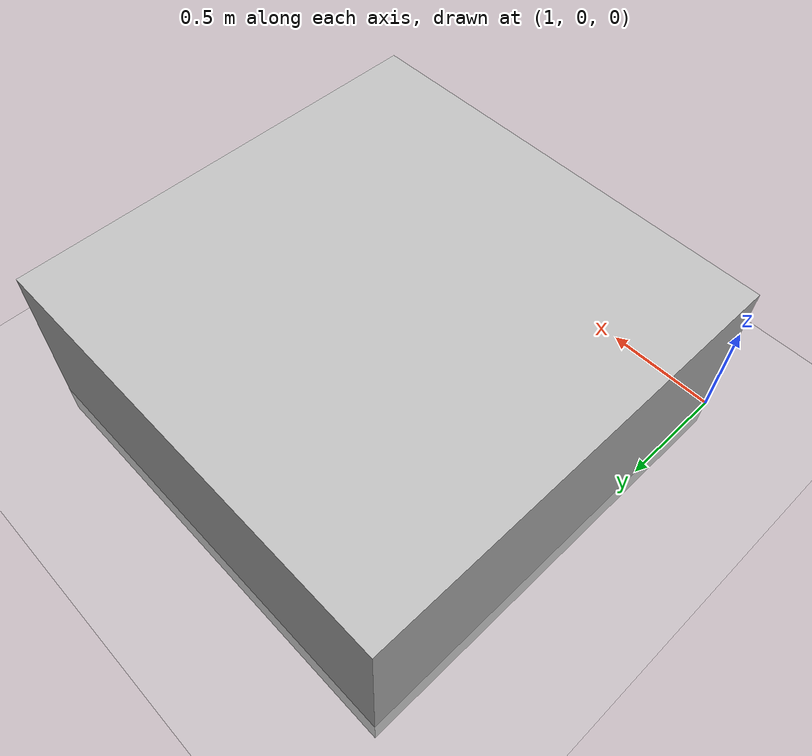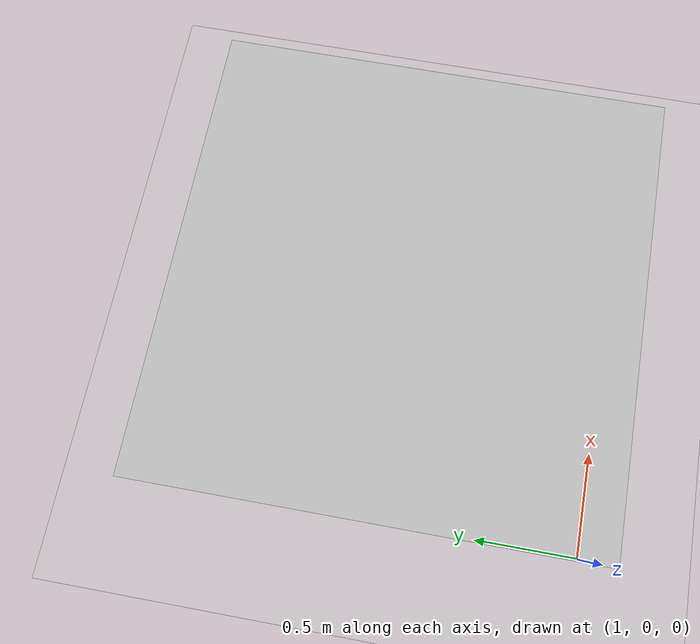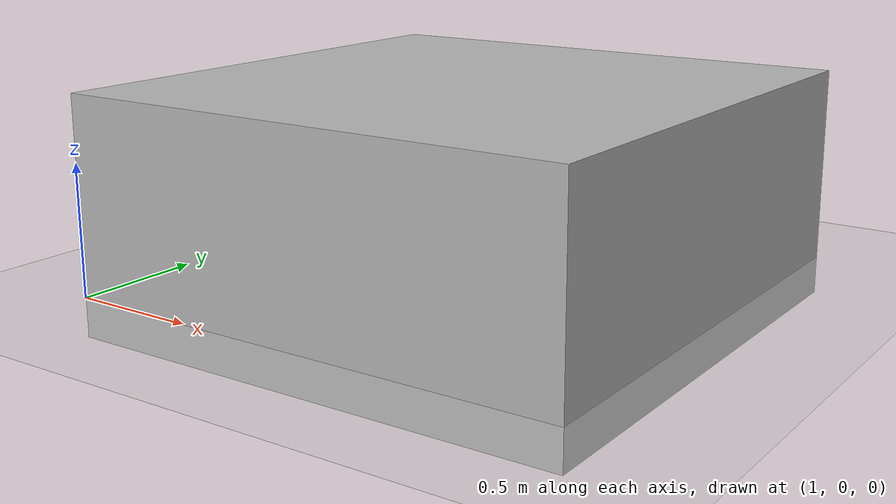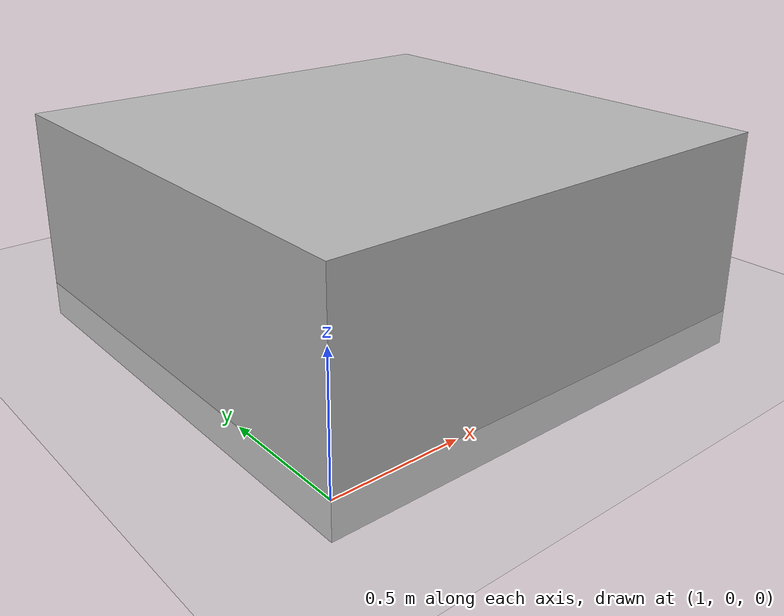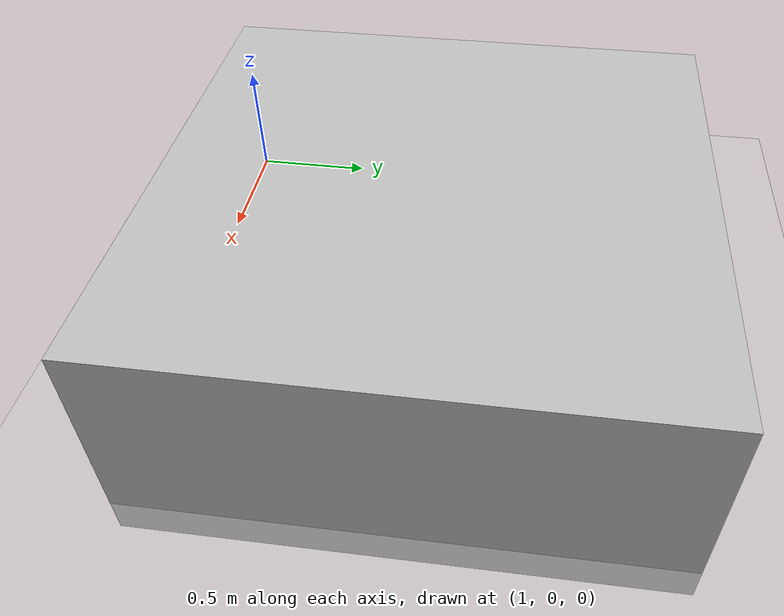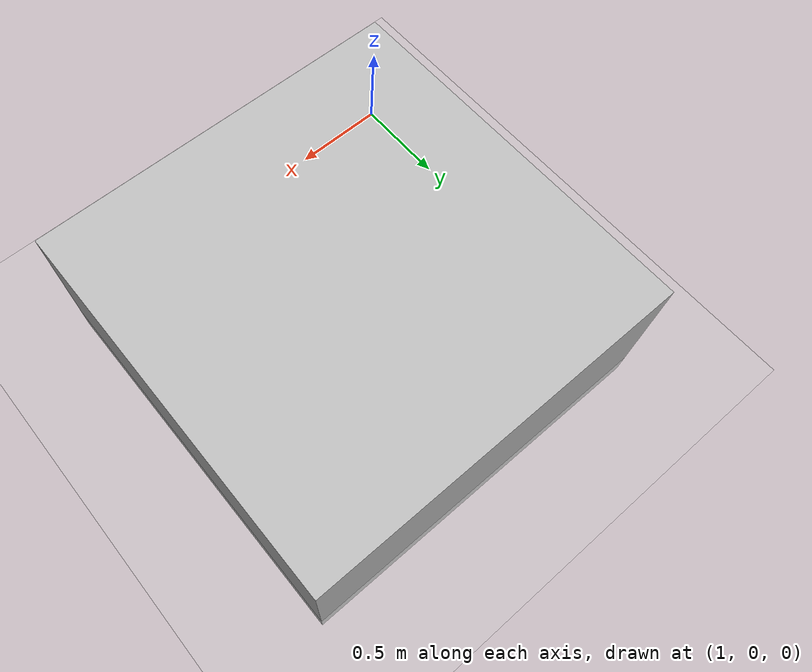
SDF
<?xml version="1.0" ?>
<sdf version="1.4">
  <!-- We use a custom world for the lwr so that the camera angle is launched correctly. -->
  <!-- One can change this world to his needs or use another one. -->

  <world name="default">

    <include>
      <uri>model://ground_plane</uri>
    </include>

    <!-- Global light source -->
    <include>
      <uri>model://sun</uri>
    </include>

    <!-- Focus camera -->
    <gui fullscreen='0'>
      <camera name='user_camera'>
	<pose>4.927360 -4.376610 3.740080 0.000000 0.275643 2.356190</pose>
	<view_controller>orbit</view_controller>
      </camera>
    </gui>

    <!-- box (like a wall) -->

    <!-- box (like a table) -->
    <model name="table">
	<pose>2 1 0.30 0 0 0</pose>
	<static>true</static>
	<link name='linkTable'>
		<pose>0 0 0 0 0 0</pose>
		<collision name="my_collisionTable">
		 	<pose>0 0 0 0 0 0</pose>
			<geometry>
		          <box>
		            <size>2 2 0.90</size>
		          </box>
		        </geometry>
	        </collision>

	        <visual name="my_visualTable">
			<geometry>
		          <box>
		            <size>2 2 0.90</size>
		          </box>
		        </geometry>
	        </visual>

		<self_collide>0</self_collide>
		<gravity>1</gravity>
	</link>
    </model>

    <!-- cylinder object -->

  </world>

</sdf>
